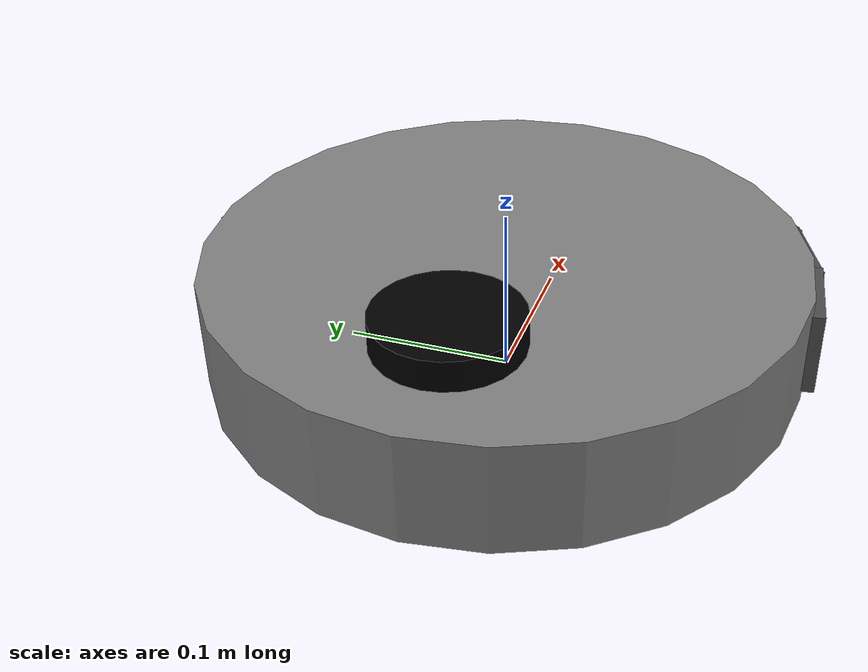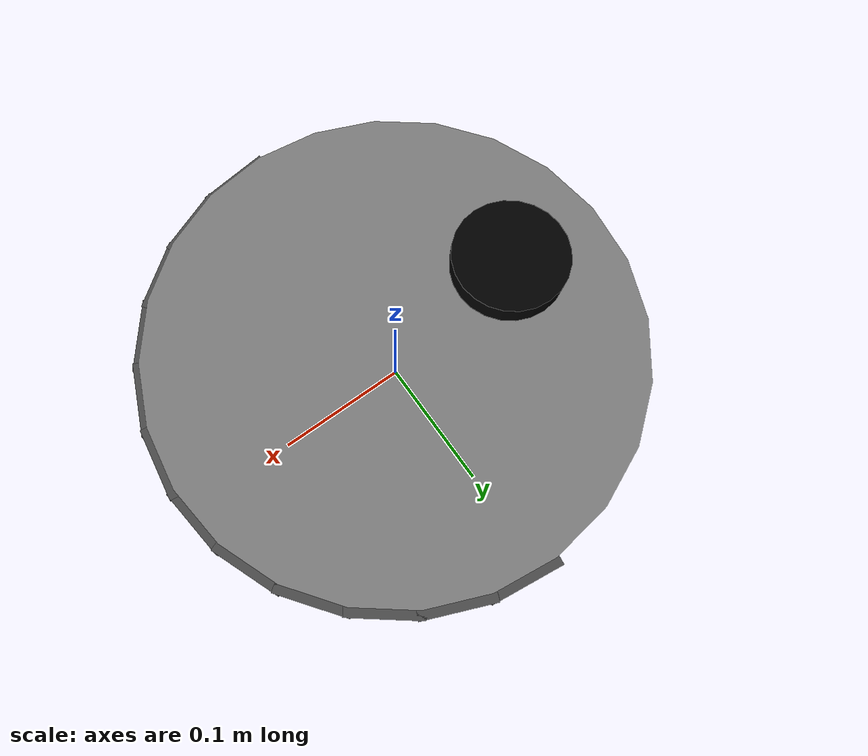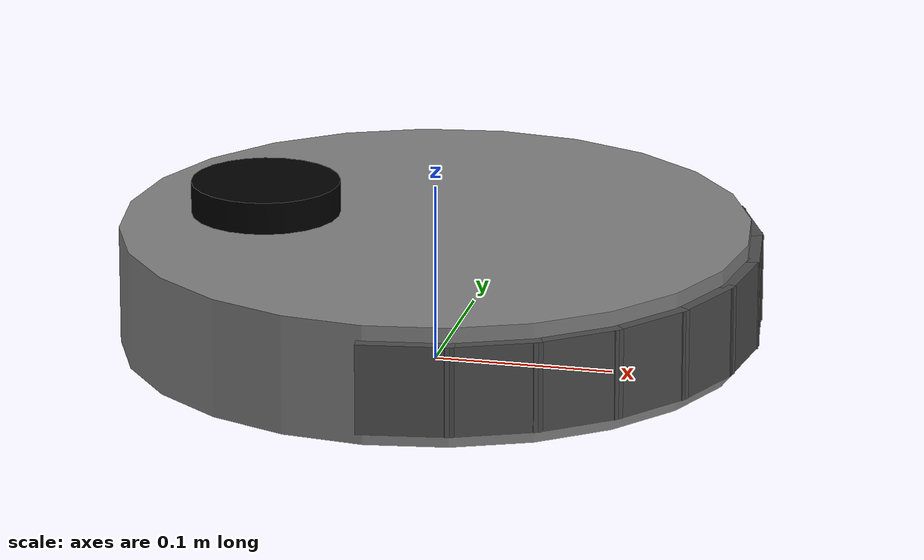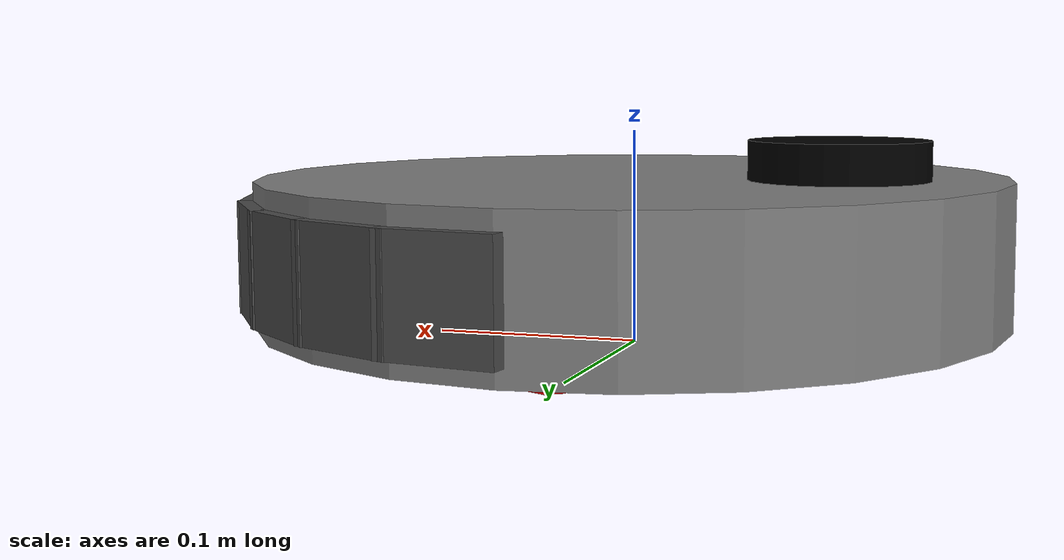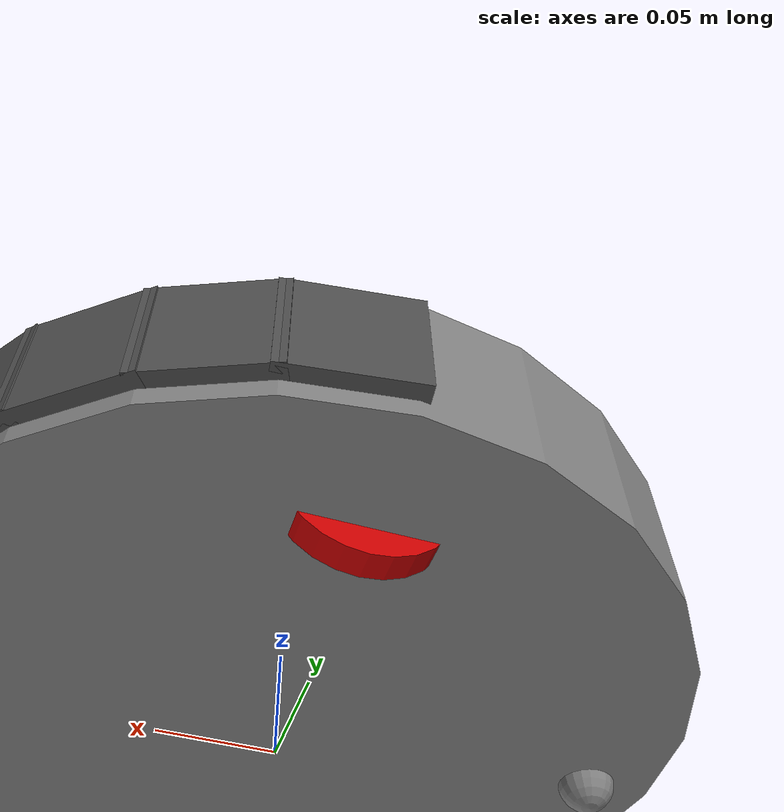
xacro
<?xml version="1.0" ?>
<robot name="proscenic_m6pro" xmlns:xacro="http://ros.org/wiki/xacro">
  <xacro:include filename="params.xacro" />
  <xacro:include filename="inertial.xacro" />
  <xacro:include filename="plugins.xacro" />
  <xacro:include filename="materials.xacro" />

  <!-- One bumper facet: a thin box tangent to the body at angle 'ang' (deg from
       front), at the body radius. Named collision so the contact sensor can list it. -->
  <xacro:macro name="bumper_facet" params="prefix idx ang width">
    <visual>
      <origin xyz="${(base_diameter/2)*cos(ang*DEG2RAD)} ${(base_diameter/2)*sin(ang*DEG2RAD)} ${bumper_z}"
              rpy="0 0 ${(ang+90)*DEG2RAD}"/>
      <geometry>
        <box size="${width} ${bumper_thickness} ${bumper_height}"/>
      </geometry>
      <material name="dark"/>
    </visual>
    <collision name="${prefix}_${idx}">
      <origin xyz="${(base_diameter/2)*cos(ang*DEG2RAD)} ${(base_diameter/2)*sin(ang*DEG2RAD)} ${bumper_z}"
              rpy="0 0 ${(ang+90)*DEG2RAD}"/>
      <geometry>
        <box size="${width} ${bumper_thickness} ${bumper_height}"/>
      </geometry>
    </collision>
  </xacro:macro>

  <!-- A 90-deg bumper half built from 'n' facets spanning a0 .. a0+90 deg.
       Facet width = arc chord * 1.15 so neighbours overlap (continuous, no gaps). -->
  <xacro:macro name="bumper_arc" params="prefix a0 n i:=0">
    <xacro:if value="${i &lt; n}">
      <xacro:bumper_facet prefix="${prefix}" idx="${i}"
        ang="${a0 + (i + 0.5) * (90.0 / n)}"
        width="${2 * (base_diameter/2) * sin(0.5 * (90.0/n) * DEG2RAD) * 1.15}"/>
      <xacro:bumper_arc prefix="${prefix}" a0="${a0}" n="${n}" i="${i + 1}"/>
    </xacro:if>
  </xacro:macro>

  <link name="base_footprint"/>

  <joint name="base_joint" type="fixed">
    <parent link="base_footprint"/>
    <child link="base_link"/>
    <origin xyz="0 0 ${floor_clearance}" rpy="0 0 0"/>
  </joint>

  <link name="base_link">
    <visual>
      <origin xyz="0 0 ${lower_cylinder_height/2}" rpy="0 0 0"/>
      <geometry>
        <cylinder length="${lower_cylinder_height}" radius="${base_diameter/2}"/>
      </geometry>
      <material name="grey"/>
    </visual>

    <collision>
      <origin xyz="0 0 ${lower_cylinder_height/2}" rpy="0 0 0"/>
      <geometry>
        <cylinder length="${lower_cylinder_height}" radius="${base_diameter/2}"/>
      </geometry>
    </collision>

    <!-- Continuous front bumper = front 180 deg of the cylinder wall (named
         collisions on base_link). Left half 0..+90 deg, right half -90..0 deg. -->
    <xacro:bumper_arc prefix="bumper_left" a0="0" n="${bumper_facets_per_side}"/>
    <xacro:bumper_arc prefix="bumper_right" a0="-90" n="${bumper_facets_per_side}"/>

    <xacro:solid_cylinder_inertia m="${lower_cylinder_mass}" r="${base_diameter/2}" h="${lower_cylinder_height}"/>
  </link>

  <joint name="caster_joint" type="fixed">
    <parent link="base_link"/>
    <child link="caster_link"/>
    <origin xyz="${caster_inset-base_diameter/2} 0 ${caster_diameter/2-floor_clearance}" rpy="0 0 0"/>
  </joint>

  <link name="caster_link">
    <visual>
      <origin xyz="0 0 0" rpy="0 0 0"/>
      <geometry>
        <sphere radius="${caster_diameter/2}"/>
      </geometry>
      <material name="grey"/>
    </visual>

   <collision>
      <origin xyz="0 0 0" rpy="0 0 0"/>
      <geometry>
        <sphere radius="${caster_diameter/2}"/>
      </geometry>
    </collision>

    <xacro:solid_sphere_inertia m="${caster_mass}" r="${caster_diameter/2}"/>
  </link>

  <joint name="wheel_left_joint" type="continuous">
    <parent link="base_link"/>
    <child link="wheel_left_link"/>
    <origin xyz="0 ${wheel_base/2} ${wheel_diameter/2-floor_clearance}" rpy="-${pi/2} 0 0"/>
    <axis xyz="0 0 1">
      <limit>
        <effort>${motor_stall_torque}</effort>
      </limit>
    </axis>
  </joint>

  <link name="wheel_left_link">
    <visual>
      <origin xyz="0 0 0" rpy="0 0 0"/>
      <geometry>
        <cylinder length="${wheel_width}" radius="${wheel_diameter/2}"/>
      </geometry>
      <material name="red"/>
    </visual>

    <collision>
      <origin xyz="0 0 0" rpy="0 0 0"/>
      <geometry>
        <cylinder length="${wheel_width}" radius="${wheel_diameter/2}"/>
      </geometry>
    </collision>

    <xacro:solid_cylinder_inertia m="${wheel_mass}" r="${wheel_diameter/2}" h="${wheel_width}"/>
  </link>

  <joint name="wheel_right_joint" type="continuous">
    <parent link="base_link"/>
    <child link="wheel_right_link"/>
    <origin xyz="0 ${-wheel_base/2} ${wheel_diameter/2-floor_clearance}" rpy="-${pi/2} 0 0"/>
    <axis xyz="0 0 1">
      <limit>
        <effort>${motor_stall_torque}</effort>
      </limit>
    </axis>
  </joint>

  <link name="wheel_right_link">
    <visual>
      <origin xyz="0 0 0" rpy="0 0 0"/>
      <geometry>
        <cylinder length="${wheel_width}" radius="${wheel_diameter/2}"/>
      </geometry>
      <material name="red"/>
    </visual>

    <collision>
      <origin xyz="0 0 0" rpy="0 0 0"/>
      <geometry>
        <cylinder length="${wheel_width}" radius="${wheel_diameter/2}"/>
      </geometry>
    </collision>

    <xacro:solid_cylinder_inertia m="${wheel_mass}" r="${wheel_diameter/2}" h="${wheel_width}"/>
  </link>

  <!-- Upright top-mounted LiDAR turret (+Z up, CCW scan) to match both the
       Gazebo gpu_lidar sensor and the physical robot's vacuum_ros2_bridge /scan. -->
  <joint name="scan_joint" type="fixed">
    <parent link="base_link"/>
    <child link="base_scan"/>
    <origin xyz="${lidar_center_offset} 0 ${lower_cylinder_height + laser_puck_offset}" rpy="0 0 0"/>
  </joint>

  <link name="base_scan">
    <visual>
      <origin xyz="0 0 0" rpy="0 0 0"/>
      <geometry>
        <cylinder length="${laser_puck_height}" radius="${laser_puck_diameter/2}"/>
      </geometry>
      <material name="black"/>
    </visual>

    <collision>
      <origin xyz="0 0 0" rpy="0 0 0"/>
      <geometry>
        <cylinder length="${laser_puck_height}" radius="${laser_puck_diameter/2}"/>
      </geometry>
    </collision>

    <xacro:solid_cylinder_inertia m="${laser_puck_mass}" r="${laser_puck_diameter/2}" h="${laser_puck_height}"/>
  </link>

</robot>

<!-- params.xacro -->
<robot xmlns:xacro="http://ros.org/wiki/xacro">
  <!-- ****************** ROBOT DIMENSIONS ****************** -->
  <!-- Units: meters, degrees, kg, N*m, m/s2 -->
  <!-- Proscenic M6 Pro: round body 349mm dia (measured), ~95mm tall (incl. LiDAR turret). -->
  <!-- wheel_base = measured wheel track 235mm. The bridge uses its own odometry
       constant WHEEL_BASE = 0.233m (2mm less); negligible, calibrate empirically. -->
  <xacro:property name="wheel_diameter" value="0.068"/>
  <xacro:property name="wheel_width" value="0.012"/>
  <xacro:property name="caster_diameter" value="0.025"/>
  <!-- Caster center to base edge -->
  <xacro:property name="caster_inset" value="0.030"/>
  <xacro:property name="floor_clearance" value="0.0125"/>
  <xacro:property name="base_diameter" value="0.349"/>
  <xacro:property name="wheel_base" value="0.235"/>
  <!-- Body cylinder: top is 79mm above the floor, minus 12.5mm floor gap = 66.5mm tall.
       LiDAR housing sits on top (body top 79mm + 18mm housing = ~97mm total height). -->
  <xacro:property name="lower_cylinder_height" value="0.0665"/>
  <!-- LiDAR housing, measured 18mm, seated flush on the body top -->
  <xacro:property name="laser_puck_height" value="0.018"/>
  <xacro:property name="laser_puck_diameter" value="0.083"/>
  <!-- offset = laser_puck_height/2 so the housing bottom sits at the body top -->
  <xacro:property name="laser_puck_offset" value="0.009"/>
  <xacro:property name="lidar_center_offset" value="-0.0965"/>

  <xacro:property name="motor_stall_torque" value="0.5"/>
  <xacro:property name="max_linear_acceleration" value="1"/>
  <xacro:property name="lower_cylinder_mass" value="2.500"/>
  <!-- caster and battery weight -->
  <xacro:property name="caster_mass" value="0.050"/>
  <xacro:property name="wheel_mass" value="0.100"/>
  <xacro:property name="laser_puck_mass" value="0.150"/>

  <xacro:property name="bumper_facets_per_side" value="6"/>
  <xacro:property name="bumper_thickness" value="0.010"/> <!-- radial; outer face ~5mm proud -->
  <xacro:property name="bumper_height" value="0.050"/>
  <xacro:property name="bumper_z" value="0.033"/>     <!-- center height in base_link frame -->

  <xacro:property name="DEG2RAD" value="0.0174533"/>
</robot>

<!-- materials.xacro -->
<robot xmlns:xacro="http://ros.org/wiki/xacro">

  <material name="black">
      <color rgba="0.0 0.0 0.0 1.0"/>
  </material>

  <material name="dark">
    <color rgba="0.3 0.3 0.3 1.0"/>
  </material>

  <material name="light_black">
    <color rgba="0.4 0.4 0.4 1.0"/>
  </material>

  <material name="blue">
    <color rgba="0.0 0.0 0.8 1.0"/>
  </material>

  <material name="green">
    <color rgba="0.0 0.8 0.0 1.0"/>
  </material>

  <material name="grey">
    <color rgba="0.5 0.5 0.5 1.0"/>
  </material>

  <material name="orange">
    <color rgba="1.0 0.4235 0.0392 1.0"/>
  </material>

  <material name="brown">
    <color rgba="0.8706 0.8118 0.7647 1.0"/>
  </material>

  <material name="red">
    <color rgba="0.8 0.0 0.0 1.0"/>
  </material>

  <material name="white">
    <color rgba="1.0 1.0 1.0 1.0"/>
  </material>

  <material name="light_gray">
    <color rgba="0.8 0.8 0.8 1.0"/>
  </material>

  <gazebo reference="wheel_left_link">
    <mu1>0.2</mu1>
    <mu2>0.2</mu2>
  </gazebo>

  <gazebo reference="wheel_right_link">
    <mu1>0.2</mu1>
    <mu2>0.2</mu2>
  </gazebo>

  <gazebo reference="caster_link">
    <mu1>0.2</mu1>
    <mu2>0.2</mu2>
  </gazebo>

</robot>
